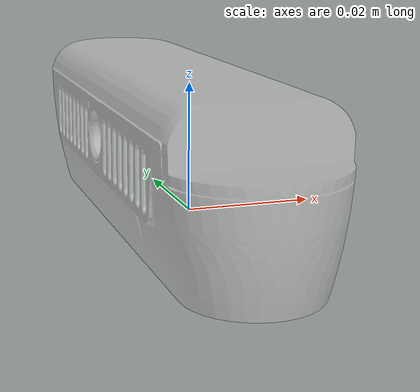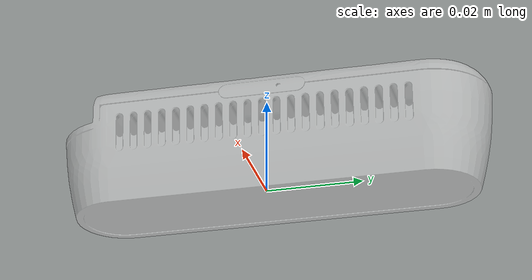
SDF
<?xml version="1.0" encoding="UTF-8"?>
<sdf version="1.5">

   <model name="d435">
      <pose>0 0 0 0 0 0</pose>
      <link name="base_link">
         <pose>0 0 0 0 0 0</pose>
         <inertial>
            <pose>0 0.0175 0.0125 0 -0 0</pose>
            <mass>0.1</mass> <!--era 0.564-->
            <inertia>
               <ixx>0.00388124</ixx>
               <ixy>0</ixy>
               <ixz>0</ixz>
               <iyy>0.00049894</iyy>
               <iyz>0</iyz>
               <izz>0.00387926</izz>
            </inertia>
         </inertial>
         <collision name="collision">
            <pose>0 0 0.0125 0 -0 0</pose>
            <geometry>
               <box>
                  <size>0.025 0.09 0.025</size>
               </box>
            </geometry>
            <surface>
               <contact>
                  <ode>
                     <kp>1e+13</kp>
                     <kd>1</kd>
                  </ode>
               </contact>
               <friction>
                  <ode>
                     <mu2>1</mu2>
                     <fdir1>0 0 0</fdir1>
                  </ode>
               </friction>
            </surface>
         </collision>

         <visual name="visual">
            <pose>0 0 0.0125 1.5708 -0 1.5708</pose>
            <geometry>
               <mesh>
                  <uri>model://d435/meshes/d435.dae</uri>
               </mesh>
            </geometry>
            <material>
               <ambient>0.5 0.5 0.5 1</ambient>
               <diffuse>0.9 0.9 0.9 0.5</diffuse>
               <specular>0.1 0.1 0.1 1</specular>
               <emissive>0 0 0 1</emissive>
               <shader type="pixel">
                  <normal_map>__default__</normal_map>
               </shader>
               <lighting>1</lighting>
            </material>
            <cast_shadows>1</cast_shadows>
         </visual>

         <sensor name="cameracolor" type="camera">
            <pose>0 0 0 0 0 0</pose>
            <camera name="camera">
               <horizontal_fov>1.500</horizontal_fov>
               <image>
                  <width>640</width>
                  <height>360</height>
                  <format>RGB_INT8</format>
               </image>
               <clip>
                  <near>0.1</near>
                  <far>30</far>
               </clip>
               <noise>
                  <type>gaussian</type>
                  <mean>0</mean>
                  <stddev>0.0</stddev>
               </noise>
            </camera>
            <always_on>1</always_on>
            <update_rate>30</update_rate>
            <visualize>0</visualize>
         </sensor>

         <sensor name="cameraired1" type="camera">
            <pose>0 0 0 0 0 0</pose>
            <camera name="camera">
               <horizontal_fov>1.500</horizontal_fov>
               <image>
                  <width>640</width>
                  <height>360</height>
                  <format>L_INT8</format>
               </image>
               <clip>
                  <near>0.1</near>
                  <far>30</far>
               </clip>
               <noise>
                  <type>gaussian</type>
                  <mean>0</mean>
                  <stddev>0.0</stddev>
               </noise>
            </camera>
            <always_on>1</always_on>
            <update_rate>30</update_rate>
            <visualize>0</visualize>
            <pose>0 0.0175 0.0125 0 -0 0</pose>
         </sensor>

         <sensor name="cameraired2" type="camera">
            <pose>0 -0.05 0 0 0 0</pose>
            <camera name="camera">
               <horizontal_fov>1.500</horizontal_fov>
               <image>
                  <width>640</width>
                  <height>360</height>
                  <format>L_INT8</format>
               </image>
               <clip>
                  <near>0.1</near>
                  <far>30</far>
               </clip>
               <noise>
                  <type>gaussian</type>
                  <mean>0</mean>
                  <stddev>0.0</stddev>
               </noise>
            </camera>
            <always_on>1</always_on>
            <update_rate>30</update_rate>
            <visualize>0</visualize>
         </sensor>

         <sensor name="cameradepth" type="depth">
            <pose>0 0 0 0 0 0</pose>
            <camera name="camera">
               <horizontal_fov>1.48702</horizontal_fov>
               <image>
                  <width>640</width>
                  <height>360</height>
               </image>
               <clip>
                  <near>0.1</near>
                  <far>20</far>
               </clip>
               <noise>
                  <type>gaussian</type>
                  <mean>0</mean>
                  <stddev>0.0</stddev>
               </noise>
            </camera>
            <always_on>1</always_on>
            <update_rate>30</update_rate>
            <visualize>0</visualize>
         </sensor>

<!-- Eu am pus-->

        <sensor name="$camera_imu" type="imu">
          <always_on>true</always_on>
          <update_rate>200</update_rate>
          <topic>camera/imu/sample</topic>
          <plugin name="cameraimu" filename="libgazebo_ros_imu_sensor.so">
            <topicName>camera/imu/sample</topicName>
            <bodyName>camera_link</bodyName>
            <frameName>world</frameName>
            <updateRateHZ>200</updateRateHZ>
            <gaussianNoise>0.1</gaussianNoise>
            <xyzOffset>0 0 0</xyzOffset>
            <rpyOffset>0 0 0</rpyOffset>
          </plugin>
        </sensor>

      </link>
      <plugin name="camera" filename="librealsense_gazebo_plugin.so">
         <prefix>camera</prefix>
         <depthUpdateRate>30.0</depthUpdateRate>
         <colorUpdateRate>30.0</colorUpdateRate>
         <infraredUpdateRate>30.0</infraredUpdateRate>
         <depthTopicName>depth_aligned_to_color_and_infra1/image_raw</depthTopicName>
         <depthCameraInfoTopicName>depth/camera_info</depthCameraInfoTopicName>
         <colorTopicName>color/image_raw</colorTopicName>
         <colorCameraInfoTopicName>color/camera_info</colorCameraInfoTopicName>
         <infrared1TopicName>infra1/image_raw</infrared1TopicName>
         <infrared1CameraInfoTopicName>infra1/camera_info</infrared1CameraInfoTopicName>
         <infrared2TopicName>infra2/image_raw</infrared2TopicName>
         <infrared2CameraInfoTopicName>infra2/camera_info</infrared2CameraInfoTopicName>
         <colorOpticalframeName>camera_color_optical_frame</colorOpticalframeName>
         <depthOpticalframeName>camera_depth_optical_frame</depthOpticalframeName>
         <infrared1OpticalframeName>camera_left_ir_optical_frame</infrared1OpticalframeName>
         <infrared2OpticalframeName>camera_right_ir_optical_frame</infrared2OpticalframeName>
         <rangeMinDepth>0.01</rangeMinDepth>
         <rangeMaxDepth>20.0</rangeMaxDepth>
         <pointCloud>1</pointCloud>
         <pointCloudTopicName>depth/color/points</pointCloudTopicName>
         <pointCloudCutoff>0.01</pointCloudCutoff>
         <pointCloudCutoffMax>20.0</pointCloudCutoffMax>

      </plugin>
   </model>
</sdf>
